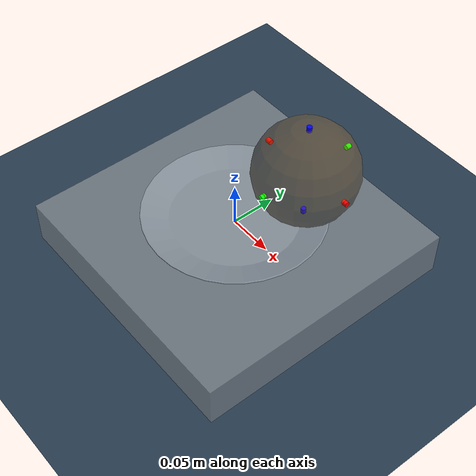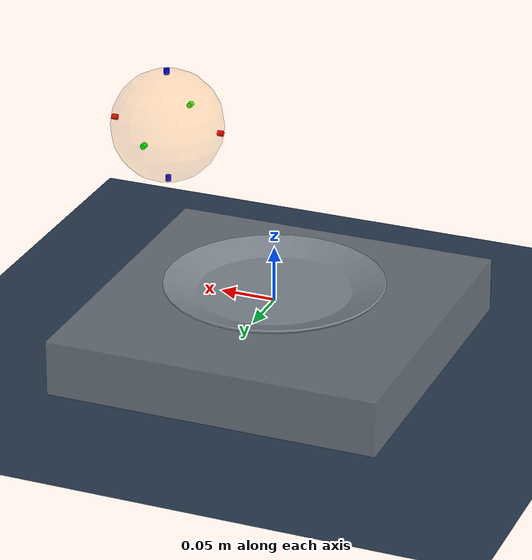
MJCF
<mujoco model="spinning_ball_plate">
  <compiler meshdir="meshes" />
  <option timestep="0.001" jacobian="dense" gravity="0 0 -9.81" cone="elliptic"/>
  <size nuserdata="1000000"/>
  <visual>
    <rgba haze="0.15 0.25 0.35 1" contactforce="1 0 0 0.8" contactpoint="1 0 0 0.8" />
    <quality shadowsize="4096" />
    <map stiffness="700" shadowscale="0.5" fogstart="10" fogend="15" zfar="40" haze="0.3" force="0.1"/>
    <scale forcewidth="0.02" contactwidth="0.01" contactheight="0.001" />
  </visual>

  <asset>
    <texture type="skybox" builtin="gradient" rgb1="0.3 0.5 0.7" rgb2="0 0 0" width="512" height="512" />
    <texture name="texplane" type="2d" builtin="checker" rgb1=".2 .3 .4" rgb2=".1 0.15 0.2" width="512" height="512" mark="cross" markrgb=".8 .8 .8" />
    <material name="matplane" reflectance="0.0" texture="texplane" texrepeat="1 1" texuniform="true" />
    <mesh file="plate_8in_col.stl" scale="1 1 1" />
  </asset>

  <custom>
    <!-- All custom parameters related to contact surfaces have the prefix cs:: -->
    <text name="cs::HydroelasticContactRepresentation" data="kPolygon" />
    <numeric name="cs::VisualizeSurfaces" data="1" />
    <numeric name="cs::ground" data="0 1.0 0.1 0.3 0.3" />
    <numeric name="cs::plate" data="0 1.0 0 1.0 1.0" />
    <numeric name="cs::ball" data="3e4 3.0 0.015 0.0000001 0.0000001" />
    <numeric name="cs::floor" data="3e4 3.0 0 0.3 0.3"/>
  </custom>

  <worldbody>
    <light directional="true" diffuse=".4 .4 .4" specular="0.1 0.1 0.1" pos="0 0 5.0" dir="0 0 -1" castshadow="false" />
    <light directional="true" diffuse=".6 .6 .6" specular="0.2 0.2 0.2" pos="0 0 4" dir="0 0 -1" castshadow="false" />
    <geom name="ground" type="plane" size="0 0 1" pos="0 0 -0.05" quat="1 0 0 0" material="matplane" />
    <body name="body_floor" pos="0 0 -0.025">
      <inertial pos="0 0 0.0" mass="0.1" diaginertia="0.000770833 0.000770833 0.0015" />
      <geom name="floor" type="box" size="0.15 0.15 0.025" rgba="0.7 0.7 0.7 0.5" solimp="0.95 0.99 0.01 0.5 2" solref="0.2 1"/>
    </body>
    <body name="body_plate" pos="0 0.0 0.0">
      <inertial pos="0 0 0.00915" mass="0.375" diaginertia="0.000860 0.000860 0.00171" />
      <freejoint name="plate_joint" />
      <geom name="plate" type="mesh" mesh="plate_8in_col" rgba="0.9 0.9 0.9 0.5"/>
    </body>
    <body name="body_ball" pos="0.1 0 0.15">
      <freejoint name="ball_joint" />
      <geom name="ball" type="sphere" size="0.05" rgba="1.0 0.55 0.0 0.2" mass="0.1"/>
      <site type="cylinder" size="0.0025" fromto="0.0525 0 0 0.0475 0 0" rgba="1 0 0 1" />
      <site type="cylinder" size="0.0025" fromto="-0.0525 0 0 -0.0475 0 0" rgba="1 0 0 1" />
      <site type="cylinder" size="0.0025" fromto="0 0.0525 0 0 0.0475 0" rgba="0 1 0 1" />
      <site type="cylinder" size="0.0025" fromto="0 -0.0525 0 0 -0.0475 0" rgba="0 1 0 1" />
      <site type="cylinder" size="0.0025" fromto="0 0 0.0525 0 0 0.0475" rgba="0 0 1 1" />
      <site type="cylinder" size="0.0025" fromto="0 0 -0.0525 0 0 -0.0475" rgba="0 0 1 1" />
    </body>
  </worldbody>
</mujoco>
